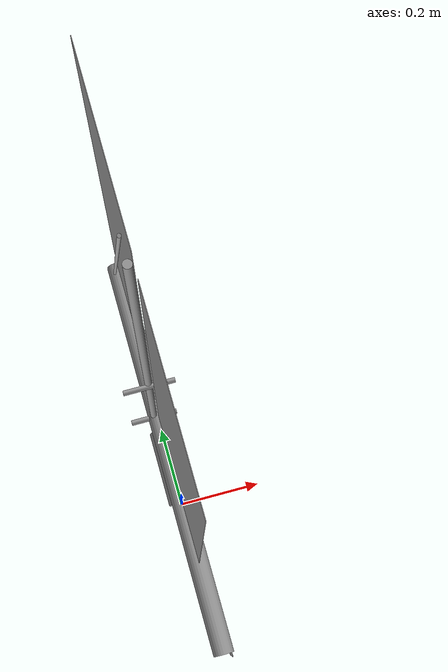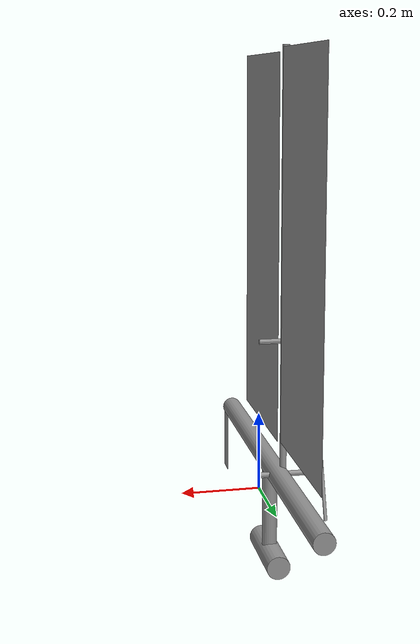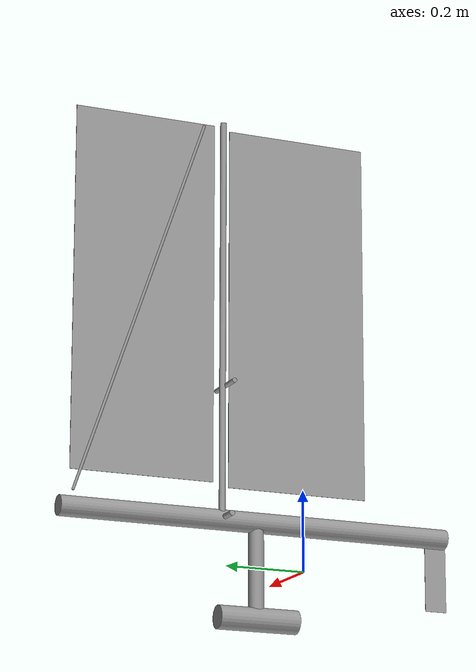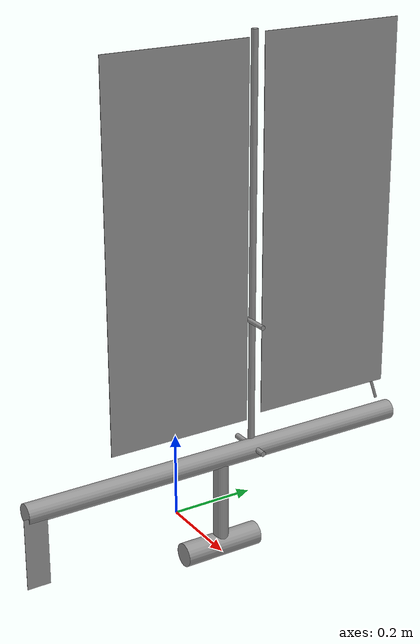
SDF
<?xml version='1.0'?>
<sdf version='1.6'>
  <model name='sailboat'>
    <link name='keel_weight'>
      <pose frame=''>-0.001544 0.120866 -0.123095 -1.5708 0 0</pose>
      <inertial>
        <mass>1</mass>
        <inertia>
          <ixx>2.39e-06</ixx>
          <ixy>0</ixy>
          <ixz>0</ixz>
          <iyy>2.39e-06</iyy>
          <iyz>0</iyz>
          <izz>2.7e-07</izz>
        </inertia>
        <pose frame=''>0 0 0 0 -0 0</pose>
      </inertial>
      <self_collide>0</self_collide>
      <kinematic>0</kinematic>
      <visual name='visual'>
        <pose frame=''>0 0 0 0 -0 0</pose>
        <geometry>
          <cylinder>
            <radius>0.0289125</radius>
            <length>0.202059</length>
          </cylinder>
        </geometry>
        <material>
          <lighting>1</lighting>
          <script>
            <uri>file://media/materials/scripts/gazebo.material</uri>
            <name>Gazebo/Grey</name>
          </script>
          <ambient>0.3 0.3 0.3 1</ambient>
          <diffuse>0.7 0.7 0.7 1</diffuse>
          <specular>0.01 0.01 0.01 1</specular>
          <emissive>0 0 0 1</emissive>
          <shader type='vertex'>
            <normal_map>__default__</normal_map>
          </shader>
        </material>
        <cast_shadows>1</cast_shadows>
        <transparency>0</transparency>
      </visual>
      <collision name='collision'>
        <laser_retro>0</laser_retro>
        <max_contacts>10</max_contacts>
        <pose frame=''>0 0 0 0 -0 0</pose>
        <geometry>
          <cylinder>
            <radius>0.028913</radius>
            <length>0.202059</length>
          </cylinder>
        </geometry>
        <surface>
          <friction>
            <ode>
              <mu>1</mu>
              <mu2>1</mu2>
              <fdir1>0 0 0</fdir1>
              <slip1>0</slip1>
              <slip2>0</slip2>
            </ode>
            <torsional>
              <coefficient>1</coefficient>
              <patch_radius>0</patch_radius>
              <surface_radius>0</surface_radius>
              <use_patch_radius>1</use_patch_radius>
              <ode>
                <slip>0</slip>
              </ode>
            </torsional>
          </friction>
          <bounce>
            <restitution_coefficient>0</restitution_coefficient>
            <threshold>1e+06</threshold>
          </bounce>
          <contact>
            <collide_without_contact>0</collide_without_contact>
            <collide_without_contact_bitmask>1</collide_without_contact_bitmask>
            <collide_bitmask>1</collide_bitmask>
            <ode>
              <soft_cfm>0</soft_cfm>
              <soft_erp>0.2</soft_erp>
              <kp>1e+13</kp>
              <kd>1</kd>
              <max_vel>0.01</max_vel>
              <min_depth>0</min_depth>
            </ode>
            <bullet>
              <split_impulse>1</split_impulse>
              <split_impulse_penetration_threshold>-0.01</split_impulse_penetration_threshold>
              <soft_cfm>0</soft_cfm>
              <soft_erp>0.2</soft_erp>
              <kp>1e+13</kp>
              <kd>1</kd>
            </bullet>
          </contact>
        </surface>
      </collision>
    </link>
    <link name='mast'>
      <pose frame=''>-0.011662 0.215153 0.606979 0 -0 0</pose>
      <inertial>
        <mass>0.00024907</mass>
        <inertia>
          <ixx>2.076e-05</ixx>
          <ixy>0</ixy>
          <ixz>0</ixz>
          <iyy>2.076e-05</iyy>
          <iyz>0</iyz>
          <izz>1e-08</izz>
        </inertia>
        <pose frame=''>0 0 0 0 -0 0</pose>
      </inertial>
      <gravity>1</gravity>
      <self_collide>0</self_collide>
      <kinematic>0</kinematic>
      <visual name='visual'>
        <pose frame=''>0 0 0 0 -0 0</pose>
        <geometry>
          <cylinder>
            <radius>0.007891</radius>
            <length>1</length>
          </cylinder>
        </geometry>
        <material>
          <lighting>1</lighting>
          <script>
            <uri>file://media/materials/scripts/gazebo.material</uri>
            <name>Gazebo/Grey</name>
          </script>
          <ambient>0.3 0.3 0.3 1</ambient>
          <diffuse>0.7 0.7 0.7 1</diffuse>
          <specular>0.01 0.01 0.01 1</specular>
          <emissive>0 0 0 1</emissive>
          <shader type='vertex'>
            <normal_map>__default__</normal_map>
          </shader>
        </material>
        <cast_shadows>1</cast_shadows>
        <transparency>0</transparency>
      </visual>
      <collision name='collision'>
        <laser_retro>0</laser_retro>
        <max_contacts>10</max_contacts>
        <pose frame=''>0 0 0 0 -0 0</pose>
        <geometry>
          <cylinder>
            <radius>0.007891</radius>
            <length>1</length>
          </cylinder>
        </geometry>
        <surface>
          <friction>
            <ode>
              <mu>1</mu>
              <mu2>1</mu2>
              <fdir1>0 0 0</fdir1>
              <slip1>0</slip1>
              <slip2>0</slip2>
            </ode>
            <torsional>
              <coefficient>1</coefficient>
              <patch_radius>0</patch_radius>
              <surface_radius>0</surface_radius>
              <use_patch_radius>1</use_patch_radius>
              <ode>
                <slip>0</slip>
              </ode>
            </torsional>
          </friction>
          <bounce>
            <restitution_coefficient>0</restitution_coefficient>
            <threshold>1e+06</threshold>
          </bounce>
          <contact>
            <collide_without_contact>0</collide_without_contact>
            <collide_without_contact_bitmask>1</collide_without_contact_bitmask>
            <collide_bitmask>1</collide_bitmask>
            <ode>
              <soft_cfm>0</soft_cfm>
              <soft_erp>0.2</soft_erp>
              <kp>1e+13</kp>
              <kd>1</kd>
              <max_vel>0.01</max_vel>
              <min_depth>0</min_depth>
            </ode>
            <bullet>
              <split_impulse>1</split_impulse>
              <split_impulse_penetration_threshold>-0.01</split_impulse_penetration_threshold>
              <soft_cfm>0</soft_cfm>
              <soft_erp>0.2</soft_erp>
              <kp>1e+13</kp>
              <kd>1</kd>
            </bullet>
          </contact>
        </surface>
      </collision>
    </link>
    <link name='spreader'>
      <pose frame=''>-0.011662 0.207369 0.436895 3.14159 1.57079 3.14159</pose>
      <inertial>
        <mass>1.36634e-05</mass>
        <inertia>
          <ixx>1.49552e-08</ixx>
          <ixy>0</ixy>
          <ixz>0</ixz>
          <iyy>1.49552e-08</iyy>
          <iyz>0</iyz>
          <izz>2.04319e-10</izz>
        </inertia>
        <pose frame=''>0 0 0 0 -0 0</pose>
      </inertial>
      <visual name='visual'>
        <pose frame=''>0 0 0 0 -0 0</pose>
        <geometry>
          <cylinder>
            <radius>0.00573907</radius>
            <length>0.114088</length>
          </cylinder>
        </geometry>
        <material>
          <lighting>1</lighting>
          <script>
            <uri>file://media/materials/scripts/gazebo.material</uri>
            <name>Gazebo/Grey</name>
          </script>
          <ambient>0.3 0.3 0.3 1</ambient>
          <diffuse>0.7 0.7 0.7 1</diffuse>
          <specular>0.01 0.01 0.01 1</specular>
          <emissive>0 0 0 1</emissive>
        </material>
        <cast_shadows>1</cast_shadows>
        <transparency>0</transparency>
      </visual>
      <collision name='collision'>
        <laser_retro>0</laser_retro>
        <max_contacts>10</max_contacts>
        <pose frame=''>0 0 0 0 -0 0</pose>
        <geometry>
          <cylinder>
            <radius>0.005739</radius>
            <length>0.114088</length>
          </cylinder>
        </geometry>
        <surface>
          <friction>
            <ode>
              <mu>1</mu>
              <mu2>1</mu2>
              <fdir1>0 0 0</fdir1>
              <slip1>0</slip1>
              <slip2>0</slip2>
            </ode>
            <torsional>
              <coefficient>1</coefficient>
              <patch_radius>0</patch_radius>
              <surface_radius>0</surface_radius>
              <use_patch_radius>1</use_patch_radius>
              <ode>
                <slip>0</slip>
              </ode>
            </torsional>
          </friction>
          <bounce>
            <restitution_coefficient>0</restitution_coefficient>
            <threshold>1e+06</threshold>
          </bounce>
          <contact>
            <collide_without_contact>0</collide_without_contact>
            <collide_without_contact_bitmask>1</collide_without_contact_bitmask>
            <collide_bitmask>1</collide_bitmask>
            <ode>
              <soft_cfm>0</soft_cfm>
              <soft_erp>0.2</soft_erp>
              <kp>1e+13</kp>
              <kd>1</kd>
              <max_vel>0.01</max_vel>
              <min_depth>0</min_depth>
            </ode>
            <bullet>
              <split_impulse>1</split_impulse>
              <split_impulse_penetration_threshold>-0.01</split_impulse_penetration_threshold>
              <soft_cfm>0</soft_cfm>
              <soft_erp>0.2</soft_erp>
              <kp>1e+13</kp>
              <kd>1</kd>
            </bullet>
          </contact>
        </surface>
      </collision>
    </link>
    <link name='shroud_base'>
      <pose frame=''>-0.011664 0.212817 0.113654 3.14159 1.57079 3.14159</pose>
      <inertial>
        <mass>1.83225e-05</mass>
        <inertia>
          <ixx>2.01018e-08</ixx>
          <ixy>0</ixy>
          <ixz>0</ixz>
          <iyy>2.01018e-08</iyy>
          <iyz>0</iyz>
          <izz>3.67411e-10</izz>
        </inertia>
        <pose frame=''>0 0 0 0 -0 0</pose>
      </inertial>
      <visual name='visual_0'>
        <pose frame=''>0 0 0 0 -0 0</pose>
        <geometry>
          <cylinder>
            <radius>0.00662917</radius>
            <length>0.114088</length>
          </cylinder>
        </geometry>
        <material>
          <lighting>1</lighting>
          <script>
            <uri>file://media/materials/scripts/gazebo.material</uri>
            <name>Gazebo/Grey</name>
          </script>
          <ambient>0.3 0.3 0.3 1</ambient>
          <diffuse>0.7 0.7 0.7 1</diffuse>
          <specular>0.01 0.01 0.01 1</specular>
          <emissive>0 0 0 1</emissive>
          <shader type='pixel'/>
        </material>
        <cast_shadows>1</cast_shadows>
        <transparency>0</transparency>
      </visual>
      <collision name='collision'>
        <laser_retro>0</laser_retro>
        <max_contacts>10</max_contacts>
        <pose frame=''>0 0 0 0 -0 0</pose>
        <geometry>
          <cylinder>
            <radius>0.006629</radius>
            <length>0.114088</length>
          </cylinder>
        </geometry>
        <surface>
          <friction>
            <ode>
              <mu>1</mu>
              <mu2>1</mu2>
              <fdir1>0 0 0</fdir1>
              <slip1>0</slip1>
              <slip2>0</slip2>
            </ode>
            <torsional>
              <coefficient>1</coefficient>
              <patch_radius>0</patch_radius>
              <surface_radius>0</surface_radius>
              <use_patch_radius>1</use_patch_radius>
              <ode>
                <slip>0</slip>
              </ode>
            </torsional>
          </friction>
          <bounce>
            <restitution_coefficient>0</restitution_coefficient>
            <threshold>1e+06</threshold>
          </bounce>
          <contact>
            <collide_without_contact>0</collide_without_contact>
            <collide_without_contact_bitmask>1</collide_without_contact_bitmask>
            <collide_bitmask>1</collide_bitmask>
            <ode>
              <soft_cfm>0</soft_cfm>
              <soft_erp>0.2</soft_erp>
              <kp>1e+13</kp>
              <kd>1</kd>
              <max_vel>0.01</max_vel>
              <min_depth>0</min_depth>
            </ode>
            <bullet>
              <split_impulse>1</split_impulse>
              <split_impulse_penetration_threshold>-0.01</split_impulse_penetration_threshold>
              <soft_cfm>0</soft_cfm>
              <soft_erp>0.2</soft_erp>
              <kp>1e+13</kp>
              <kd>1</kd>
            </bullet>
          </contact>
        </surface>
      </collision>
    </link>
    <link name='keel_shaft'>
      <pose frame=''>-0.00058 0.122673 -0.006163 0 -0 0</pose>
      <inertial>
        <mass>0.00032937</mass>
        <inertia>
          <ixx>1.57e-06</ixx>
          <ixy>0</ixy>
          <ixz>0</ixz>
          <iyy>1.57e-06</iyy>
          <iyz>0</iyz>
          <izz>6e-08</izz>
        </inertia>
        <pose frame=''>0 0 0 0 -0 0</pose>
      </inertial>
      <self_collide>0</self_collide>
      <kinematic>0</kinematic>
      <visual name='visual'>
        <pose frame=''>0 0 0 0 -0 0</pose>
        <geometry>
          <cylinder>
            <radius>0.0185852</radius>
            <length>0.236884</length>
          </cylinder>
        </geometry>
        <material>
          <lighting>1</lighting>
          <script>
            <uri>file://media/materials/scripts/gazebo.material</uri>
            <name>Gazebo/Grey</name>
          </script>
          <ambient>0.3 0.3 0.3 1</ambient>
          <diffuse>0.7 0.7 0.7 1</diffuse>
          <specular>0.01 0.01 0.01 1</specular>
          <emissive>0 0 0 1</emissive>
          <shader type='vertex'>
            <normal_map>__default__</normal_map>
          </shader>
        </material>
        <cast_shadows>1</cast_shadows>
        <transparency>0</transparency>
      </visual>
      <collision name='collision'>
        <laser_retro>0</laser_retro>
        <max_contacts>10</max_contacts>
        <pose frame=''>0 0 0 0 -0 0</pose>
        <geometry>
          <cylinder>
            <radius>0.018585</radius>
            <length>0.236884</length>
          </cylinder>
        </geometry>
        <surface>
          <friction>
            <ode>
              <mu>1</mu>
              <mu2>1</mu2>
              <fdir1>0 0 0</fdir1>
              <slip1>0</slip1>
              <slip2>0</slip2>
            </ode>
            <torsional>
              <coefficient>1</coefficient>
              <patch_radius>0</patch_radius>
              <surface_radius>0</surface_radius>
              <use_patch_radius>1</use_patch_radius>
              <ode>
                <slip>0</slip>
              </ode>
            </torsional>
          </friction>
          <bounce>
            <restitution_coefficient>0</restitution_coefficient>
            <threshold>1e+06</threshold>
          </bounce>
          <contact>
            <collide_without_contact>0</collide_without_contact>
            <collide_without_contact_bitmask>1</collide_without_contact_bitmask>
            <collide_bitmask>1</collide_bitmask>
            <ode>
              <soft_cfm>0</soft_cfm>
              <soft_erp>0.2</soft_erp>
              <kp>1e+13</kp>
              <kd>1</kd>
              <max_vel>0.01</max_vel>
              <min_depth>0</min_depth>
            </ode>
            <bullet>
              <split_impulse>1</split_impulse>
              <split_impulse_penetration_threshold>-0.01</split_impulse_penetration_threshold>
              <soft_cfm>0</soft_cfm>
              <soft_erp>0.2</soft_erp>
              <kp>1e+13</kp>
              <kd>1</kd>
            </bullet>
          </contact>
        </surface>
      </collision>
    </link>
    <link name='mainsail'>
      <pose frame=''>-0.00231 0.015723 0.640196 0 -0 0</pose>
      <inertial>
        <mass>0.000373451</mass>
        <inertia>
          <ixx>2.93918e-05</ixx>
          <ixy>0</ixy>
          <ixz>0</ixz>
          <iyy>2.53572e-05</iyy>
          <iyz>0</iyz>
          <izz>4.03469e-06</izz>
        </inertia>
        <pose frame=''>0 0 0 0 -0 0</pose>
      </inertial>
      <visual name='visual'>
        <pose frame=''>0 0 0 0 -0 0</pose>
        <geometry>
          <box>
            <size>0.001152 0.360047 0.902659</size>
          </box>
        </geometry>
        <material>
          <lighting>1</lighting>
          <script>
            <uri>file://media/materials/scripts/gazebo.material</uri>
            <name>Gazebo/Grey</name>
          </script>
          <ambient>0.3 0.3 0.3 1</ambient>
          <diffuse>0.7 0.7 0.7 1</diffuse>
          <specular>0.01 0.01 0.01 1</specular>
          <emissive>0 0 0 1</emissive>
        </material>
        <cast_shadows>1</cast_shadows>
        <transparency>0</transparency>
      </visual>
      <collision name='collision'>
        <laser_retro>0</laser_retro>
        <max_contacts>10</max_contacts>
        <pose frame=''>0 0 0 0 -0 0</pose>
        <geometry>
          <box>
            <size>0.001152 0.360047 0.902659</size>
          </box>
        </geometry>
        <surface>
          <friction>
            <ode>
              <mu>1</mu>
              <mu2>1</mu2>
              <fdir1>0 0 0</fdir1>
              <slip1>0</slip1>
              <slip2>0</slip2>
            </ode>
            <torsional>
              <coefficient>1</coefficient>
              <patch_radius>0</patch_radius>
              <surface_radius>0</surface_radius>
              <use_patch_radius>1</use_patch_radius>
              <ode>
                <slip>0</slip>
              </ode>
            </torsional>
          </friction>
          <bounce>
            <restitution_coefficient>0</restitution_coefficient>
            <threshold>1e+06</threshold>
          </bounce>
          <contact>
            <collide_without_contact>0</collide_without_contact>
            <collide_without_contact_bitmask>1</collide_without_contact_bitmask>
            <collide_bitmask>1</collide_bitmask>
            <ode>
              <soft_cfm>0</soft_cfm>
              <soft_erp>0.2</soft_erp>
              <kp>1e+13</kp>
              <kd>1</kd>
              <max_vel>0.01</max_vel>
              <min_depth>0</min_depth>
            </ode>
            <bullet>
              <split_impulse>1</split_impulse>
              <split_impulse_penetration_threshold>-0.01</split_impulse_penetration_threshold>
              <soft_cfm>0</soft_cfm>
              <soft_erp>0.2</soft_erp>
              <kp>1e+13</kp>
              <kd>1</kd>
            </bullet>
          </contact>
        </surface>
      </collision>
    </link>
    <link name='jib'>
      <pose frame=''>-0.001212 0.414707 0.650336 0 -0 0</pose>
      <inertial>
        <mass>0.000373876</mass>
        <inertia>
          <ixx>2.93944e-05</ixx>
          <ixy>0</ixy>
          <ixz>0</ixz>
          <iyy>2.53553e-05</iyy>
          <iyz>0</iyz>
          <izz>4.03913e-06</izz>
        </inertia>
        <pose frame=''>0 0 0 0 -0 0</pose>
      </inertial>
      <visual name='visual_0'>
        <pose frame=''>0 0 0 0 -0 0</pose>
        <geometry>
          <box>
            <size>0.001152 0.360047 0.902116</size>
          </box>
        </geometry>
        <material>
          <lighting>1</lighting>
          <script>
            <uri>file://media/materials/scripts/gazebo.material</uri>
            <name>Gazebo/Grey</name>
          </script>
          <ambient>0.3 0.3 0.3 1</ambient>
          <diffuse>0.7 0.7 0.7 1</diffuse>
          <specular>0.01 0.01 0.01 1</specular>
          <emissive>0 0 0 1</emissive>
          <shader type='pixel'/>
        </material>
        <cast_shadows>1</cast_shadows>
        <transparency>0</transparency>
      </visual>
      <collision name='collision'>
        <laser_retro>0</laser_retro>
        <max_contacts>10</max_contacts>
        <pose frame=''>0 0 0 0 -0 0</pose>
        <geometry>
          <box>
            <size>0.001152 0.360047 0.902116</size>
          </box>
        </geometry>
        <surface>
          <friction>
            <ode>
              <mu>1</mu>
              <mu2>1</mu2>
              <fdir1>0 0 0</fdir1>
              <slip1>0</slip1>
              <slip2>0</slip2>
            </ode>
            <torsional>
              <coefficient>1</coefficient>
              <patch_radius>0</patch_radius>
              <surface_radius>0</surface_radius>
              <use_patch_radius>1</use_patch_radius>
              <ode>
                <slip>0</slip>
              </ode>
            </torsional>
          </friction>
          <bounce>
            <restitution_coefficient>0</restitution_coefficient>
            <threshold>1e+06</threshold>
          </bounce>
          <contact>
            <collide_without_contact>0</collide_without_contact>
            <collide_without_contact_bitmask>1</collide_without_contact_bitmask>
            <collide_bitmask>1</collide_bitmask>
            <ode>
              <soft_cfm>0</soft_cfm>
              <soft_erp>0.2</soft_erp>
              <kp>1e+13</kp>
              <kd>1</kd>
              <max_vel>0.01</max_vel>
              <min_depth>0</min_depth>
            </ode>
            <bullet>
              <split_impulse>1</split_impulse>
              <split_impulse_penetration_threshold>-0.01</split_impulse_penetration_threshold>
              <soft_cfm>0</soft_cfm>
              <soft_erp>0.2</soft_erp>
              <kp>1e+13</kp>
              <kd>1</kd>
            </bullet>
          </contact>
        </surface>
      </collision>
    </link>
    <link name='hull'>
      <pose frame=''>-0.001544 0.120866 0.109668 -1.5708 0 0</pose>
      <inertial>
        <mass>0.00245939</mass>
        <inertia>
          <ixx>0.000205327</ixx>
          <ixy>0</ixy>
          <ixz>0</ixz>
          <iyy>0.000205327</iyy>
          <iyz>0</iyz>
          <izz>7.56076e-07</izz>
        </inertia>
        <pose frame=''>0 0 0 0 -0 0</pose>
      </inertial>
      <self_collide>0</self_collide>
      <kinematic>0</kinematic>
      <visual name='visual'>
        <pose frame=''>0 0 0 0 -0 0</pose>
        <geometry>
          <cylinder>
            <radius>0.0247953</radius>
            <length>1</length>
          </cylinder>
        </geometry>
        <material>
          <lighting>1</lighting>
          <script>
            <uri>file://media/materials/scripts/gazebo.material</uri>
            <name>Gazebo/Grey</name>
          </script>
          <ambient>0.3 0.3 0.3 1</ambient>
          <diffuse>0.7 0.7 0.7 1</diffuse>
          <specular>0.01 0.01 0.01 1</specular>
          <emissive>0 0 0 1</emissive>
        </material>
        <cast_shadows>1</cast_shadows>
        <transparency>0</transparency>
      </visual>
      <collision name='collision'>
        <laser_retro>0</laser_retro>
        <max_contacts>10</max_contacts>
        <pose frame=''>0 0 0 0 -0 0</pose>
        <geometry>
          <cylinder>
            <radius>0.024795</radius>
            <length>1</length>
          </cylinder>
        </geometry>
        <surface>
          <friction>
            <ode>
              <mu>1</mu>
              <mu2>1</mu2>
              <fdir1>0 0 0</fdir1>
              <slip1>0</slip1>
              <slip2>0</slip2>
            </ode>
            <torsional>
              <coefficient>1</coefficient>
              <patch_radius>0</patch_radius>
              <surface_radius>0</surface_radius>
              <use_patch_radius>1</use_patch_radius>
              <ode>
                <slip>0</slip>
              </ode>
            </torsional>
          </friction>
          <bounce>
            <restitution_coefficient>0</restitution_coefficient>
            <threshold>1e+06</threshold>
          </bounce>
          <contact>
            <collide_without_contact>0</collide_without_contact>
            <collide_without_contact_bitmask>1</collide_without_contact_bitmask>
            <collide_bitmask>1</collide_bitmask>
            <ode>
              <soft_cfm>0</soft_cfm>
              <soft_erp>0.2</soft_erp>
              <kp>1e+13</kp>
              <kd>1</kd>
              <max_vel>0.01</max_vel>
              <min_depth>0</min_depth>
            </ode>
            <bullet>
              <split_impulse>1</split_impulse>
              <split_impulse_penetration_threshold>-0.01</split_impulse_penetration_threshold>
              <soft_cfm>0</soft_cfm>
              <soft_erp>0.2</soft_erp>
              <kp>1e+13</kp>
              <kd>1</kd>
            </bullet>
          </contact>
        </surface>
      </collision>
    </link>
    <link name='forestay'>
      <pose frame=''>-0.011662 0.427628 0.619873 0.329082 -0 0</pose>
      <inertial>
        <mass>4.736e-05</mass>
        <inertia>
          <ixx>3.95e-06</ixx>
          <ixy>0</ixy>
          <ixz>0</ixz>
          <iyy>3.95e-06</iyy>
          <iyz>0</iyz>
          <izz>0</izz>
        </inertia>
        <pose frame=''>0 0 0 0 -0 0</pose>
      </inertial>
      <gravity>1</gravity>
      <self_collide>0</self_collide>
      <kinematic>0</kinematic>
      <visual name='visual'>
        <pose frame=''>0 0 0 0 -0 0</pose>
        <geometry>
          <cylinder>
            <radius>0.00344896</radius>
            <length>1</length>
          </cylinder>
        </geometry>
        <material>
          <lighting>1</lighting>
          <script>
            <uri>file://media/materials/scripts/gazebo.material</uri>
            <name>Gazebo/Grey</name>
          </script>
          <ambient>0.3 0.3 0.3 1</ambient>
          <diffuse>0.7 0.7 0.7 1</diffuse>
          <specular>0.01 0.01 0.01 1</specular>
          <emissive>0 0 0 1</emissive>
          <shader type='vertex'>
            <normal_map>__default__</normal_map>
          </shader>
        </material>
        <cast_shadows>1</cast_shadows>
        <transparency>0</transparency>
      </visual>
      <collision name='collision'>
        <laser_retro>0</laser_retro>
        <max_contacts>10</max_contacts>
        <pose frame=''>0 0 0 0 -0 0</pose>
        <geometry>
          <cylinder>
            <radius>0.003449</radius>
            <length>1</length>
          </cylinder>
        </geometry>
        <surface>
          <friction>
            <ode>
              <mu>1</mu>
              <mu2>1</mu2>
              <fdir1>0 0 0</fdir1>
              <slip1>0</slip1>
              <slip2>0</slip2>
            </ode>
            <torsional>
              <coefficient>1</coefficient>
              <patch_radius>0</patch_radius>
              <surface_radius>0</surface_radius>
              <use_patch_radius>1</use_patch_radius>
              <ode>
                <slip>0</slip>
              </ode>
            </torsional>
          </friction>
          <bounce>
            <restitution_coefficient>0</restitution_coefficient>
            <threshold>1e+06</threshold>
          </bounce>
          <contact>
            <collide_without_contact>0</collide_without_contact>
            <collide_without_contact_bitmask>1</collide_without_contact_bitmask>
            <collide_bitmask>1</collide_bitmask>
            <ode>
              <soft_cfm>0</soft_cfm>
              <soft_erp>0.2</soft_erp>
              <kp>1e+13</kp>
              <kd>1</kd>
              <max_vel>0.01</max_vel>
              <min_depth>0</min_depth>
            </ode>
            <bullet>
              <split_impulse>1</split_impulse>
              <split_impulse_penetration_threshold>-0.01</split_impulse_penetration_threshold>
              <soft_cfm>0</soft_cfm>
              <soft_erp>0.2</soft_erp>
              <kp>1e+13</kp>
              <kd>1</kd>
            </bullet>
          </contact>
        </surface>
      </collision>
    </link>
    <link name='rudder'>
      <pose frame=''>0.017743 -0.363288 0.02031 0 -0 0</pose>
      <inertial>
        <mass>5.13389e-06</mass>
        <inertia>
          <ixx>1.45289e-08</ixx>
          <ixy>0</ixy>
          <ixz>0</ixz>
          <iyy>1.31674e-08</iyy>
          <iyz>0</iyz>
          <izz>1.36172e-09</izz>
        </inertia>
        <pose frame=''>0 0 0 0 -0 0</pose>
      </inertial>
      <self_collide>0</self_collide>
      <kinematic>0</kinematic>
      <visual name='visual'>
        <pose frame=''>0 0 0 0 -0 0</pose>
        <geometry>
          <box>
            <size>0.000521 0.056395 0.175449</size>
          </box>
        </geometry>
        <material>
          <lighting>1</lighting>
          <script>
            <uri>file://media/materials/scripts/gazebo.material</uri>
            <name>Gazebo/Grey</name>
          </script>
          <ambient>0.3 0.3 0.3 1</ambient>
          <diffuse>0.7 0.7 0.7 1</diffuse>
          <specular>0.01 0.01 0.01 1</specular>
          <emissive>0 0 0 1</emissive>
        </material>
        <cast_shadows>1</cast_shadows>
        <transparency>0</transparency>
      </visual>
      <collision name='collision'>
        <laser_retro>0</laser_retro>
        <max_contacts>10</max_contacts>
        <pose frame=''>0 0 0 0 -0 0</pose>
        <geometry>
          <box>
            <size>0.000521 0.056395 0.175449</size>
          </box>
        </geometry>
        <surface>
          <friction>
            <ode>
              <mu>1</mu>
              <mu2>1</mu2>
              <fdir1>0 0 0</fdir1>
              <slip1>0</slip1>
              <slip2>0</slip2>
            </ode>
            <torsional>
              <coefficient>1</coefficient>
              <patch_radius>0</patch_radius>
              <surface_radius>0</surface_radius>
              <use_patch_radius>1</use_patch_radius>
              <ode>
                <slip>0</slip>
              </ode>
            </torsional>
          </friction>
          <bounce>
            <restitution_coefficient>0</restitution_coefficient>
            <threshold>1e+06</threshold>
          </bounce>
          <contact>
            <collide_without_contact>0</collide_without_contact>
            <collide_without_contact_bitmask>1</collide_without_contact_bitmask>
            <collide_bitmask>1</collide_bitmask>
            <ode>
              <soft_cfm>0</soft_cfm>
              <soft_erp>0.2</soft_erp>
              <kp>1e+13</kp>
              <kd>1</kd>
              <max_vel>0.01</max_vel>
              <min_depth>0</min_depth>
            </ode>
            <bullet>
              <split_impulse>1</split_impulse>
              <split_impulse_penetration_threshold>-0.01</split_impulse_penetration_threshold>
              <soft_cfm>0</soft_cfm>
              <soft_erp>0.2</soft_erp>
              <kp>1e+13</kp>
              <kd>1</kd>
            </bullet>
          </contact>
        </surface>
      </collision>
    </link>
    <joint name='mast_to_spreader' type='fixed'>
      <parent>mast</parent>
      <child>spreader</child>
      <pose frame=''>0 0 0 0 -0 0</pose>
      <physics>
        <ode>
          <limit>
            <cfm>0</cfm>
            <erp>0.2</erp>
          </limit>
          <suspension>
            <cfm>0</cfm>
            <erp>0.2</erp>
          </suspension>
        </ode>
      </physics>
    </joint>
    <joint name='mainsail_luff' type='revolute'>
      <parent>mast</parent>
      <child>mainsail</child>
      <pose frame=''>0 0 0 0 -0 0</pose>
      <axis>
        <xyz>0 0 1</xyz>
        <use_parent_model_frame>0</use_parent_model_frame>
        <limit>
          <lower>-1.79769e+308</lower>
          <upper>1.79769e+308</upper>
          <effort>-1</effort>
          <velocity>-1</velocity>
        </limit>
        <dynamics>
          <spring_reference>0</spring_reference>
          <spring_stiffness>0</spring_stiffness>
          <damping>0</damping>
          <friction>0</friction>
        </dynamics>
      </axis>
      <physics>
        <ode>
          <limit>
            <cfm>0</cfm>
            <erp>0.2</erp>
          </limit>
          <suspension>
            <cfm>0</cfm>
            <erp>0.2</erp>
          </suspension>
        </ode>
      </physics>
    </joint>
    <joint name='keel_shaft_to_keel_weight' type='fixed'>
      <parent>keel_shaft</parent>
      <child>keel_weight</child>
      <pose frame=''>0 0 0 0 -0 0</pose>
      <physics>
        <ode>
          <limit>
            <cfm>0</cfm>
            <erp>0.2</erp>
          </limit>
          <suspension>
            <cfm>0</cfm>
            <erp>0.2</erp>
          </suspension>
        </ode>
      </physics>
    </joint>
    <joint name='jib_luff' type='revolute'>
      <parent>forestay</parent>
      <child>jib</child>
      <pose frame=''>0 0 0 0 -0 0</pose>
      <axis>
        <xyz>0 -0.32 0.946</xyz>
        <use_parent_model_frame>0</use_parent_model_frame>
        <limit>
          <lower>-1.79769e+308</lower>
          <upper>1.79769e+308</upper>
          <effort>-1</effort>
          <velocity>-1</velocity>
        </limit>
        <dynamics>
          <spring_reference>0</spring_reference>
          <spring_stiffness>0</spring_stiffness>
          <damping>0</damping>
          <friction>0</friction>
        </dynamics>
      </axis>
      <physics>
        <ode>
          <limit>
            <cfm>0</cfm>
            <erp>0.2</erp>
          </limit>
          <suspension>
            <cfm>0</cfm>
            <erp>0.2</erp>
          </suspension>
        </ode>
      </physics>
    </joint>
    <joint name='hull_to_shroud_base' type='fixed'>
      <parent>hull</parent>
      <child>shroud_base</child>
      <pose frame=''>0 0 0 0 -0 0</pose>
      <physics>
        <ode>
          <limit>
            <cfm>0</cfm>
            <erp>0.2</erp>
          </limit>
          <suspension>
            <cfm>0</cfm>
            <erp>0.2</erp>
          </suspension>
        </ode>
      </physics>
    </joint>
    <joint name='hull_to_rudder' type='revolute'>
      <parent>hull</parent>
      <child>rudder</child>
      <pose frame=''>0 0 0 0 -0 0</pose>
      <axis>
        <xyz>0 0 1</xyz>
        <use_parent_model_frame>0</use_parent_model_frame>
        <limit>
          <lower>-1.79769e+308</lower>
          <upper>1.79769e+308</upper>
          <effort>-1</effort>
          <velocity>-1</velocity>
        </limit>
        <dynamics>
          <spring_reference>0</spring_reference>
          <spring_stiffness>0</spring_stiffness>
          <damping>0</damping>
          <friction>0</friction>
        </dynamics>
      </axis>
      <physics>
        <ode>
          <limit>
            <cfm>0</cfm>
            <erp>0.2</erp>
          </limit>
          <suspension>
            <cfm>0</cfm>
            <erp>0.2</erp>
          </suspension>
        </ode>
      </physics>
    </joint>
    <joint name='hull_to_mast' type='fixed'>
      <parent>hull</parent>
      <child>mast</child>
      <pose frame=''>0 0 0 0 -0 0</pose>
      <physics>
        <ode>
          <limit>
            <cfm>0</cfm>
            <erp>0.2</erp>
          </limit>
          <suspension>
            <cfm>0</cfm>
            <erp>0.2</erp>
          </suspension>
        </ode>
      </physics>
    </joint>
    <joint name='hull_to_keel_shaft' type='fixed'>
      <parent>hull</parent>
      <child>keel_shaft</child>
      <pose frame=''>0 0 0 0 -0 0</pose>
      <physics>
        <ode>
          <limit>
            <cfm>0</cfm>
            <erp>0.2</erp>
          </limit>
          <suspension>
            <cfm>0</cfm>
            <erp>0.2</erp>
          </suspension>
        </ode>
      </physics>
    </joint>
    <joint name='hull_to_forestay' type='fixed'>
      <parent>hull</parent>
      <child>forestay</child>
      <pose frame=''>0 0 0 0 -0 0</pose>
      <physics>
        <ode>
          <limit>
            <cfm>0</cfm>
            <erp>0.2</erp>
          </limit>
          <suspension>
            <cfm>0</cfm>
            <erp>0.2</erp>
          </suspension>
        </ode>
      </physics>
    </joint>
    <static>0</static>
    <allow_auto_disable>1</allow_auto_disable>
  </model>
</sdf>
